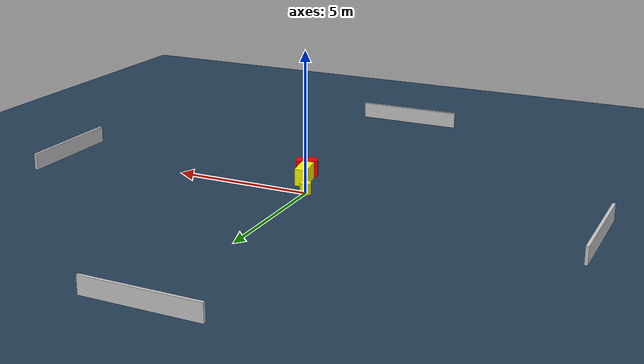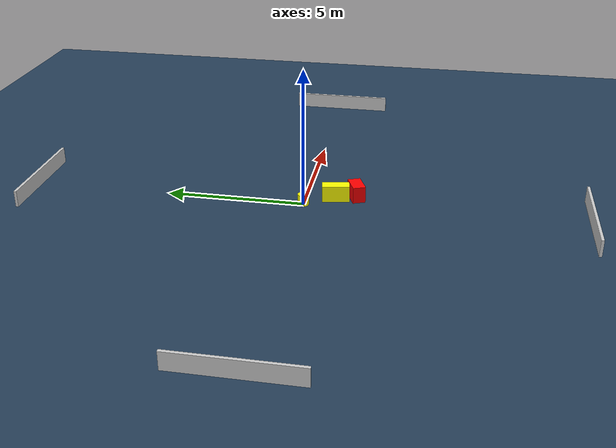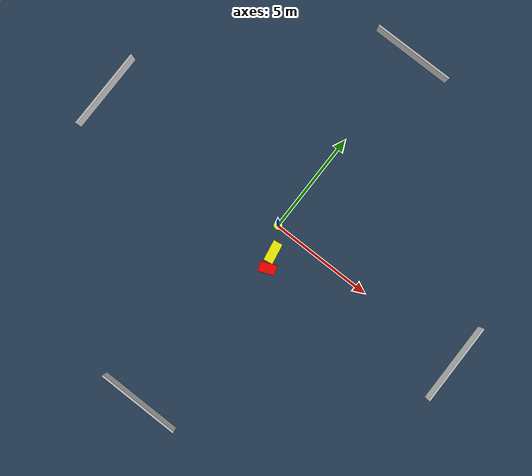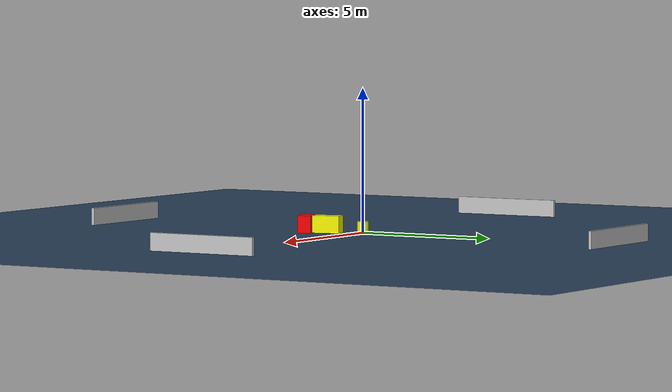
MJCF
<?xml version="1.0" ?>
<mujoco model="generated_environment">
  <option timestep="0.01" integrator="RK4" cone="elliptic"/>
  <default>
    <geom density="1"/>
  </default>
  <asset>
    <texture builtin="gradient" height="3072" name="skybox" rgb1="0.3 0.5 0.7" rgb2="0 0 0" type="skybox" width="512"/>
    <texture builtin="checker" height="300" name="groundplane" rgb1="0.2 0.3 0.4" rgb2="0.1 0.2 0.3" type="2d" width="300"/>
    <material name="groundplane" reflectance="0.2" texrepeat="5 5" texture="groundplane"/>
  </asset>
  <worldbody>
    <light dir="0 0 -1" directional="true" pos="0 0 1.5"/>
    <geom condim="3" friction="0.5 0.005 0.001" material="groundplane" name="floor" pos="0 0 0" size="0 0 0.05" type="plane"/>
    <body name="walls">
      <geom name="wall_1" condim="4" pos="-10.0 0.0 0.3" rgba="0.800000011920929 0.800000011920929 0.800000011920929 1.0" size="0.05 2.0 0.3" type="box"/>
      <geom name="wall_2" condim="4" pos="10.0 0.0 0.3" rgba="0.800000011920929 0.800000011920929 0.800000011920929 1.0" size="0.05 2.0 0.3" type="box"/>
      <geom name="wall_3" condim="4" pos="0.0 -10.0 0.3" rgba="0.800000011920929 0.800000011920929 0.800000011920929 1.0" size="2.0 0.05 0.3" type="box"/>
      <geom name="wall_4" condim="4" pos="0.0 10.0 0.3" rgba="0.800000011920929 0.800000011920929 0.800000011920929 1.0" size="2.0 0.05 0.3" type="box"/>
    </body>
    <body name="robot">
      <joint name="joint_x" type="slide" pos="0 0 0" axis="1 0 0"/>
      <joint name="joint_y" type="slide" pos="0 0 0" axis="0 1 0"/>
      <geom name="robot" type="cylinder" pos="0.0 0.0 0.2" size="0.2 0.2 0.0" mass="5.0" friction="1.0 0.005 0.0001" condim="4" rgba="1.0 1.0 0.0 1.0"/>
    </body>
    <body name="obstacle_1_movable">
      <geom name="obstacle_1_movable" condim="4" pos="0.5705042348018573 -1.0847236929652986 0.3" euler="0 0 10.0717197395103" friction="0.0 0.005 0.001" rgba="1.0 1.0 0.0 1.0" size="0.22121672206282525 0.49088278904458194 0.3" type="box" mass="0.1"/>
      <joint type="free"/>
    </body>
    <body name="obstacle_2_static">
      <geom name="obstacle_2_static" condim="4" pos="0.812527927206344 -1.807031936212422 0.3" euler="0 0 112.30009632421154" friction="0.0 0.005 0.001" rgba="1.0 0.0 0.0 1.0" size="0.2322318376460633 0.38943238609497766 0.3" type="box"/>
    </body>
  </worldbody>
  <actuator>
    <motor name="actuator_x" joint="joint_x" gear="1" ctrlrange="-1 1"/>
    <motor name="actuator_y" joint="joint_y" gear="1" ctrlrange="-1 1"/>
  </actuator>
</mujoco>
